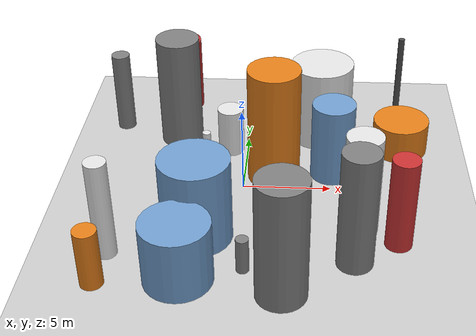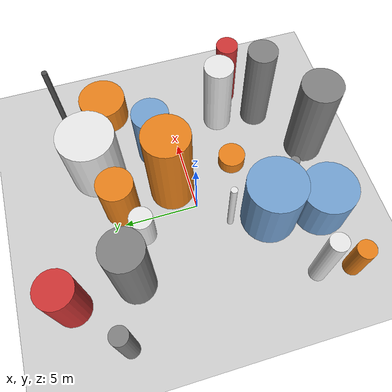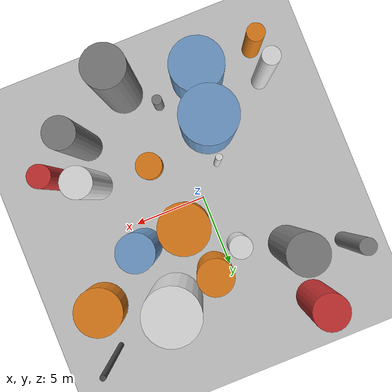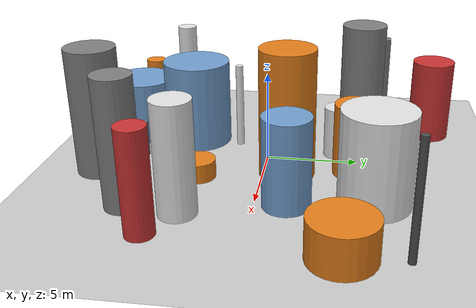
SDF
<?xml version='1.0'?>
<sdf version='1.6'>
  <world name='default'>
    <!-- Sun light -->
    <light name='sun' type='directional'>
      <cast_shadows>1</cast_shadows>
      <pose>0 0 10 0 0 0</pose>
      <diffuse>0.8 0.8 0.8 1</diffuse>
      <specular>0.2 0.2 0.2 1</specular>
      <attenuation>
        <range>1000</range>
        <constant>0.9</constant>
        <linear>0.01</linear>
        <quadratic>0.001</quadratic>
      </attenuation>
      <direction>-0.5 0.1 -0.9</direction>
    </light>

    <!-- Ground plane -->
    <model name='ground_plane'>
      <static>1</static>
      <link name='link'>
        <collision name='collision'>
          <geometry>
            <plane>
              <normal>0 0 1</normal>
              <size>100 100</size>
            </plane>
          </geometry>
          <surface>
            <contact>
              <collide_bitmask>65535</collide_bitmask>
              <ode/>
            </contact>
            <friction>
              <ode>
                <mu>100</mu>
                <mu2>50</mu2>
              </ode>
              <torsional><ode/></torsional>
            </friction>
            <bounce/>
          </surface>
          <max_contacts>10</max_contacts>
        </collision>
        <visual name='visual'>
          <cast_shadows>0</cast_shadows>
          <geometry>
            <plane>
              <normal>0 0 1</normal>
              <size>100 100</size>
            </plane>
          </geometry>
          <material>
            <script>
              <uri>file://media/materials/scripts/gazebo.material</uri>
              <n>Gazebo/Grey</n>
            </script>
          </material>
        </visual>
      </link>
    </model>

    <!-- Environment -->
    <magnetic_field>6e-06 2.3e-05 -4.2e-05</magnetic_field>
    <atmosphere type='adiabatic'/>
    <physics name='default_physics' default='0' type='ode'>
      <gravity>0 0 -9.8</gravity>
      <max_step_size>0.004</max_step_size>
      <real_time_factor>1</real_time_factor>
      <real_time_update_rate>250</real_time_update_rate>
    </physics>
    <scene>
      <ambient>0.4 0.4 0.4 1</ambient>
      <background>0.7 0.7 0.7 1</background>
      <shadows>1</shadows>
    </scene>
    <wind/>
    <spherical_coordinates>
      <surface_model>EARTH_WGS84</surface_model>
      <latitude_deg>0</latitude_deg>
      <longitude_deg>0</longitude_deg>
      <elevation>0</elevation>
      <heading_deg>0</heading_deg>
    </spherical_coordinates>

    <!-- ============ OBSTACLES (21) ============ -->
    <model name='obs_00'>
      <static>1</static>
      <link name='link'>
        <visual name='visual'>
          <geometry>
            <cylinder>
              <radius>1.8312</radius>
              <length>3.5835</length>
            </cylinder>
          </geometry>
          <material>
            <script>
              <n>Gazebo/Blue</n>
              <uri>file://media/materials/scripts/gazebo.material</uri>
            </script>
            <ambient>0.447 0.624 0.812 1</ambient>
          </material>
        </visual>
        <collision name='collision'>
          <geometry>
            <cylinder>
              <radius>1.8312</radius>
              <length>3.5835</length>
            </cylinder>
          </geometry>
          <max_contacts>10</max_contacts>
          <surface>
            <contact><ode/></contact>
            <bounce/>
            <friction>
              <ode><mu>1</mu><mu2>1</mu2></ode>
              <torsional><ode/></torsional>
            </friction>
          </surface>
        </collision>
      </link>
      <pose>-2.7024 -7.9680 1.7918 0 0 1.0926</pose>
    </model>

    <model name='obs_01'>
      <static>1</static>
      <link name='link'>
        <visual name='visual'>
          <geometry>
            <cylinder>
              <radius>1.2491</radius>
              <length>4.7437</length>
            </cylinder>
          </geometry>
          <material>
            <script>
              <n>Gazebo/Blue</n>
              <uri>file://media/materials/scripts/gazebo.material</uri>
            </script>
            <ambient>0.447 0.624 0.812 1</ambient>
          </material>
        </visual>
        <collision name='collision'>
          <geometry>
            <cylinder>
              <radius>1.2491</radius>
              <length>4.7437</length>
            </cylinder>
          </geometry>
          <max_contacts>10</max_contacts>
          <surface>
            <contact><ode/></contact>
            <bounce/>
            <friction>
              <ode><mu>1</mu><mu2>1</mu2></ode>
              <torsional><ode/></torsional>
            </friction>
          </surface>
        </collision>
      </link>
      <pose>5.0953 1.6174 2.3718 0 0 0.5636</pose>
    </model>

    <model name='obs_02'>
      <static>1</static>
      <link name='link'>
        <visual name='visual'>
          <geometry>
            <cylinder>
              <radius>1.1900</radius>
              <length>4.7048</length>
            </cylinder>
          </geometry>
          <material>
            <script>
              <n>Gazebo/Red</n>
              <uri>file://media/materials/scripts/gazebo.material</uri>
            </script>
            <ambient>0.8 0.2 0.2 1</ambient>
          </material>
        </visual>
        <collision name='collision'>
          <geometry>
            <cylinder>
              <radius>1.1900</radius>
              <length>4.7048</length>
            </cylinder>
          </geometry>
          <max_contacts>10</max_contacts>
          <surface>
            <contact><ode/></contact>
            <bounce/>
            <friction>
              <ode><mu>1</mu><mu2>1</mu2></ode>
              <torsional><ode/></torsional>
            </friction>
          </surface>
        </collision>
      </link>
      <pose>-4.5450 9.3122 2.3524 0 0 0.1220</pose>
    </model>

    <model name='obs_03'>
      <static>1</static>
      <link name='link'>
        <visual name='visual'>
          <geometry>
            <cylinder>
              <radius>0.9966</radius>
              <length>5.9256</length>
            </cylinder>
          </geometry>
          <material>
            <script>
              <n>Gazebo/White</n>
              <uri>file://media/materials/scripts/gazebo.material</uri>
            </script>
            <ambient>0.9 0.9 0.9 1</ambient>
          </material>
        </visual>
        <collision name='collision'>
          <geometry>
            <cylinder>
              <radius>0.9966</radius>
              <length>5.9256</length>
            </cylinder>
          </geometry>
          <max_contacts>10</max_contacts>
          <surface>
            <contact><ode/></contact>
            <bounce/>
            <friction>
              <ode><mu>1</mu><mu2>1</mu2></ode>
              <torsional><ode/></torsional>
            </friction>
          </surface>
        </collision>
      </link>
      <pose>6.5657 -3.5033 2.9628 0 0 3.1163</pose>
    </model>

    <model name='obs_04'>
      <static>1</static>
      <link name='link'>
        <visual name='visual'>
          <geometry>
            <cylinder>
              <radius>0.5815</radius>
              <length>5.7541</length>
            </cylinder>
          </geometry>
          <material>
            <script>
              <n>Gazebo/White</n>
              <uri>file://media/materials/scripts/gazebo.material</uri>
            </script>
            <ambient>0.9 0.9 0.9 1</ambient>
          </material>
        </visual>
        <collision name='collision'>
          <geometry>
            <cylinder>
              <radius>0.5815</radius>
              <length>5.7541</length>
            </cylinder>
          </geometry>
          <max_contacts>10</max_contacts>
          <surface>
            <contact><ode/></contact>
            <bounce/>
            <friction>
              <ode><mu>1</mu><mu2>1</mu2></ode>
              <torsional><ode/></torsional>
            </friction>
          </surface>
        </collision>
      </link>
      <pose>-6.7217 -6.1707 2.8770 0 0 0.0947</pose>
    </model>

    <model name='obs_05'>
      <static>1</static>
      <link name='link'>
        <visual name='visual'>
          <geometry>
            <cylinder>
              <radius>0.7417</radius>
              <length>5.4109</length>
            </cylinder>
          </geometry>
          <material>
            <script>
              <n>Gazebo/Red</n>
              <uri>file://media/materials/scripts/gazebo.material</uri>
            </script>
            <ambient>0.8 0.2 0.2 1</ambient>
          </material>
        </visual>
        <collision name='collision'>
          <geometry>
            <cylinder>
              <radius>0.7417</radius>
              <length>5.4109</length>
            </cylinder>
          </geometry>
          <max_contacts>10</max_contacts>
          <surface>
            <contact><ode/></contact>
            <bounce/>
            <friction>
              <ode><mu>1</mu><mu2>1</mu2></ode>
              <torsional><ode/></torsional>
            </friction>
          </surface>
        </collision>
      </link>
      <pose>8.5818 -4.7214 2.7055 0 0 1.9116</pose>
    </model>

    <model name='obs_06'>
      <static>1</static>
      <link name='link'>
        <visual name='visual'>
          <geometry>
            <cylinder>
              <radius>0.6165</radius>
              <length>3.3660</length>
            </cylinder>
          </geometry>
          <material>
            <script>
              <n>Gazebo/Orange</n>
              <uri>file://media/materials/scripts/gazebo.material</uri>
            </script>
            <ambient>0.9 0.5 0.1 1</ambient>
          </material>
        </visual>
        <collision name='collision'>
          <geometry>
            <cylinder>
              <radius>0.6165</radius>
              <length>3.3660</length>
            </cylinder>
          </geometry>
          <max_contacts>10</max_contacts>
          <surface>
            <contact><ode/></contact>
            <bounce/>
            <friction>
              <ode><mu>1</mu><mu2>1</mu2></ode>
              <torsional><ode/></torsional>
            </friction>
          </surface>
        </collision>
      </link>
      <pose>-6.9812 -8.4933 1.6830 0 0 0.5033</pose>
    </model>

    <model name='obs_07'>
      <static>1</static>
      <link name='link'>
        <visual name='visual'>
          <geometry>
            <cylinder>
              <radius>0.1902</radius>
              <length>5.9791</length>
            </cylinder>
          </geometry>
          <material>
            <script>
              <n>Gazebo/DarkGrey</n>
              <uri>file://media/materials/scripts/gazebo.material</uri>
            </script>
            <ambient>0.3 0.3 0.3 1</ambient>
          </material>
        </visual>
        <collision name='collision'>
          <geometry>
            <cylinder>
              <radius>0.1902</radius>
              <length>5.9791</length>
            </cylinder>
          </geometry>
          <max_contacts>10</max_contacts>
          <surface>
            <contact><ode/></contact>
            <bounce/>
            <friction>
              <ode><mu>1</mu><mu2>1</mu2></ode>
              <torsional><ode/></torsional>
            </friction>
          </surface>
        </collision>
      </link>
      <pose>9.2089 7.4641 2.9896 0 0 2.1253</pose>
    </model>

    <model name='obs_08'>
      <static>1</static>
      <link name='link'>
        <visual name='visual'>
          <geometry>
            <cylinder>
              <radius>1.9140</radius>
              <length>4.9363</length>
            </cylinder>
          </geometry>
          <material>
            <script>
              <n>Gazebo/Blue</n>
              <uri>file://media/materials/scripts/gazebo.material</uri>
            </script>
            <ambient>0.447 0.624 0.812 1</ambient>
          </material>
        </visual>
        <collision name='collision'>
          <geometry>
            <cylinder>
              <radius>1.9140</radius>
              <length>4.9363</length>
            </cylinder>
          </geometry>
          <max_contacts>10</max_contacts>
          <surface>
            <contact><ode/></contact>
            <bounce/>
            <friction>
              <ode><mu>1</mu><mu2>1</mu2></ode>
              <torsional><ode/></torsional>
            </friction>
          </surface>
        </collision>
      </link>
      <pose>-2.1291 -4.4837 2.4682 0 0 1.0130</pose>
    </model>

    <model name='obs_09'>
      <static>1</static>
      <link name='link'>
        <visual name='visual'>
          <geometry>
            <cylinder>
              <radius>0.9897</radius>
              <length>6.8270</length>
            </cylinder>
          </geometry>
          <material>
            <script>
              <n>Gazebo/Grey</n>
              <uri>file://media/materials/scripts/gazebo.material</uri>
            </script>
            <ambient>0.5 0.5 0.5 1</ambient>
          </material>
        </visual>
        <collision name='collision'>
          <geometry>
            <cylinder>
              <radius>0.9897</radius>
              <length>6.8270</length>
            </cylinder>
          </geometry>
          <max_contacts>10</max_contacts>
          <surface>
            <contact><ode/></contact>
            <bounce/>
            <friction>
              <ode><mu>1</mu><mu2>1</mu2></ode>
              <torsional><ode/></torsional>
            </friction>
          </surface>
        </collision>
      </link>
      <pose>6.2165 -6.3152 3.4135 0 0 0.9264</pose>
    </model>

    <model name='obs_10'>
      <static>1</static>
      <link name='link'>
        <visual name='visual'>
          <geometry>
            <cylinder>
              <radius>1.2790</radius>
              <length>6.8494</length>
            </cylinder>
          </geometry>
          <material>
            <script>
              <n>Gazebo/Grey</n>
              <uri>file://media/materials/scripts/gazebo.material</uri>
            </script>
            <ambient>0.5 0.5 0.5 1</ambient>
          </material>
        </visual>
        <collision name='collision'>
          <geometry>
            <cylinder>
              <radius>1.2790</radius>
              <length>6.8494</length>
            </cylinder>
          </geometry>
          <max_contacts>10</max_contacts>
          <surface>
            <contact><ode/></contact>
            <bounce/>
            <friction>
              <ode><mu>1</mu><mu2>1</mu2></ode>
              <torsional><ode/></torsional>
            </friction>
          </surface>
        </collision>
      </link>
      <pose>-4.1910 5.1546 3.4247 0 0 1.6947</pose>
    </model>

    <model name='obs_11'>
      <static>1</static>
      <link name='link'>
        <visual name='visual'>
          <geometry>
            <cylinder>
              <radius>0.5508</radius>
              <length>5.0350</length>
            </cylinder>
          </geometry>
          <material>
            <script>
              <n>Gazebo/Grey</n>
              <uri>file://media/materials/scripts/gazebo.material</uri>
            </script>
            <ambient>0.5 0.5 0.5 1</ambient>
          </material>
        </visual>
        <collision name='collision'>
          <geometry>
            <cylinder>
              <radius>0.5508</radius>
              <length>5.0350</length>
            </cylinder>
          </geometry>
          <max_contacts>10</max_contacts>
          <surface>
            <contact><ode/></contact>
            <bounce/>
            <friction>
              <ode><mu>1</mu><mu2>1</mu2></ode>
              <torsional><ode/></torsional>
            </friction>
          </surface>
        </collision>
      </link>
      <pose>-7.9670 6.3869 2.5175 0 0 2.9630</pose>
    </model>

    <model name='obs_12'>
      <static>1</static>
      <link name='link'>
        <visual name='visual'>
          <geometry>
            <cylinder>
              <radius>1.8818</radius>
              <length>5.0243</length>
            </cylinder>
          </geometry>
          <material>
            <script>
              <n>Gazebo/White</n>
              <uri>file://media/materials/scripts/gazebo.material</uri>
            </script>
            <ambient>0.9 0.9 0.9 1</ambient>
          </material>
        </visual>
        <collision name='collision'>
          <geometry>
            <cylinder>
              <radius>1.8818</radius>
              <length>5.0243</length>
            </cylinder>
          </geometry>
          <max_contacts>10</max_contacts>
          <surface>
            <contact><ode/></contact>
            <bounce/>
            <friction>
              <ode><mu>1</mu><mu2>1</mu2></ode>
              <torsional><ode/></torsional>
            </friction>
          </surface>
        </collision>
      </link>
      <pose>4.4378 5.9350 2.5122 0 0 1.2640</pose>
    </model>

    <model name='obs_13'>
      <static>1</static>
      <link name='link'>
        <visual name='visual'>
          <geometry>
            <cylinder>
              <radius>1.6665</radius>
              <length>2.0811</length>
            </cylinder>
          </geometry>
          <material>
            <script>
              <n>Gazebo/Orange</n>
              <uri>file://media/materials/scripts/gazebo.material</uri>
            </script>
            <ambient>0.9 0.5 0.1 1</ambient>
          </material>
        </visual>
        <collision name='collision'>
          <geometry>
            <cylinder>
              <radius>1.6665</radius>
              <length>2.0811</length>
            </cylinder>
          </geometry>
          <max_contacts>10</max_contacts>
          <surface>
            <contact><ode/></contact>
            <bounce/>
            <friction>
              <ode><mu>1</mu><mu2>1</mu2></ode>
              <torsional><ode/></torsional>
            </friction>
          </surface>
        </collision>
      </link>
      <pose>9.2816 4.4809 1.0406 0 0 2.7550</pose>
    </model>

    <model name='obs_14'>
      <static>1</static>
      <link name='link'>
        <visual name='visual'>
          <geometry>
            <cylinder>
              <radius>0.9384</radius>
              <length>1.0351</length>
            </cylinder>
          </geometry>
          <material>
            <script>
              <n>Gazebo/Orange</n>
              <uri>file://media/materials/scripts/gazebo.material</uri>
            </script>
            <ambient>0.9 0.5 0.1 1</ambient>
          </material>
        </visual>
        <collision name='collision'>
          <geometry>
            <cylinder>
              <radius>0.9384</radius>
              <length>1.0351</length>
            </cylinder>
          </geometry>
          <max_contacts>10</max_contacts>
          <surface>
            <contact><ode/></contact>
            <bounce/>
            <friction>
              <ode><mu>1</mu><mu2>1</mu2></ode>
              <torsional><ode/></torsional>
            </friction>
          </surface>
        </collision>
      </link>
      <pose>2.6909 -3.3835 0.5175 0 0 1.1493</pose>
    </model>

    <model name='obs_15'>
      <static>1</static>
      <link name='link'>
        <visual name='visual'>
          <geometry>
            <cylinder>
              <radius>0.7754</radius>
              <length>2.9063</length>
            </cylinder>
          </geometry>
          <material>
            <script>
              <n>Gazebo/White</n>
              <uri>file://media/materials/scripts/gazebo.material</uri>
            </script>
            <ambient>0.9 0.9 0.9 1</ambient>
          </material>
        </visual>
        <collision name='collision'>
          <geometry>
            <cylinder>
              <radius>0.7754</radius>
              <length>2.9063</length>
            </cylinder>
          </geometry>
          <max_contacts>10</max_contacts>
          <surface>
            <contact><ode/></contact>
            <bounce/>
            <friction>
              <ode><mu>1</mu><mu2>1</mu2></ode>
              <torsional><ode/></torsional>
            </friction>
          </surface>
        </collision>
      </link>
      <pose>-1.0195 3.8863 1.4531 0 0 1.2936</pose>
    </model>

    <model name='obs_16'>
      <static>1</static>
      <link name='link'>
        <visual name='visual'>
          <geometry>
            <cylinder>
              <radius>1.2053</radius>
              <length>3.9896</length>
            </cylinder>
          </geometry>
          <material>
            <script>
              <n>Gazebo/Orange</n>
              <uri>file://media/materials/scripts/gazebo.material</uri>
            </script>
            <ambient>0.9 0.5 0.1 1</ambient>
          </material>
        </visual>
        <collision name='collision'>
          <geometry>
            <cylinder>
              <radius>1.2053</radius>
              <length>3.9896</length>
            </cylinder>
          </geometry>
          <max_contacts>10</max_contacts>
          <surface>
            <contact><ode/></contact>
            <bounce/>
            <friction>
              <ode><mu>1</mu><mu2>1</mu2></ode>
              <torsional><ode/></torsional>
            </friction>
          </surface>
        </collision>
      </link>
      <pose>1.1657 4.9134 1.9948 0 0 1.6376</pose>
    </model>

    <model name='obs_17'>
      <static>1</static>
      <link name='link'>
        <visual name='visual'>
          <geometry>
            <cylinder>
              <radius>0.3457</radius>
              <length>2.0243</length>
            </cylinder>
          </geometry>
          <material>
            <script>
              <n>Gazebo/Grey</n>
              <uri>file://media/materials/scripts/gazebo.material</uri>
            </script>
            <ambient>0.5 0.5 0.5 1</ambient>
          </material>
        </visual>
        <collision name='collision'>
          <geometry>
            <cylinder>
              <radius>0.3457</radius>
              <length>2.0243</length>
            </cylinder>
          </geometry>
          <max_contacts>10</max_contacts>
          <surface>
            <contact><ode/></contact>
            <bounce/>
            <friction>
              <ode><mu>1</mu><mu2>1</mu2></ode>
              <torsional><ode/></torsional>
            </friction>
          </surface>
        </collision>
      </link>
      <pose>0.4897 -7.1516 1.0122 0 0 1.4108</pose>
    </model>

    <model name='obs_18'>
      <static>1</static>
      <link name='link'>
        <visual name='visual'>
          <geometry>
            <cylinder>
              <radius>1.3420</radius>
              <length>6.9470</length>
            </cylinder>
          </geometry>
          <material>
            <script>
              <n>Gazebo/Grey</n>
              <uri>file://media/materials/scripts/gazebo.material</uri>
            </script>
            <ambient>0.5 0.5 0.5 1</ambient>
          </material>
        </visual>
        <collision name='collision'>
          <geometry>
            <cylinder>
              <radius>1.3420</radius>
              <length>6.9470</length>
            </cylinder>
          </geometry>
          <max_contacts>10</max_contacts>
          <surface>
            <contact><ode/></contact>
            <bounce/>
            <friction>
              <ode><mu>1</mu><mu2>1</mu2></ode>
              <torsional><ode/></torsional>
            </friction>
          </surface>
        </collision>
      </link>
      <pose>2.5243 -8.8410 3.4735 0 0 2.3081</pose>
    </model>

    <model name='obs_19'>
      <static>1</static>
      <link name='link'>
        <visual name='visual'>
          <geometry>
            <cylinder>
              <radius>1.5124</radius>
              <length>7.0334</length>
            </cylinder>
          </geometry>
          <material>
            <script>
              <n>Gazebo/Orange</n>
              <uri>file://media/materials/scripts/gazebo.material</uri>
            </script>
            <ambient>0.9 0.5 0.1 1</ambient>
          </material>
        </visual>
        <collision name='collision'>
          <geometry>
            <cylinder>
              <radius>1.5124</radius>
              <length>7.0334</length>
            </cylinder>
          </geometry>
          <max_contacts>10</max_contacts>
          <surface>
            <contact><ode/></contact>
            <bounce/>
            <friction>
              <ode><mu>1</mu><mu2>1</mu2></ode>
              <torsional><ode/></torsional>
            </friction>
          </surface>
        </collision>
      </link>
      <pose>1.7049 1.2711 3.5167 0 0 1.5890</pose>
    </model>

    <model name='obs_20'>
      <static>1</static>
      <link name='link'>
        <visual name='visual'>
          <geometry>
            <cylinder>
              <radius>0.2172</radius>
              <length>4.8645</length>
            </cylinder>
          </geometry>
          <material>
            <script>
              <n>Gazebo/White</n>
              <uri>file://media/materials/scripts/gazebo.material</uri>
            </script>
            <ambient>0.9 0.9 0.9 1</ambient>
          </material>
        </visual>
        <collision name='collision'>
          <geometry>
            <cylinder>
              <radius>0.2172</radius>
              <length>4.8645</length>
            </cylinder>
          </geometry>
          <max_contacts>10</max_contacts>
          <surface>
            <contact><ode/></contact>
            <bounce/>
            <friction>
              <ode><mu>1</mu><mu2>1</mu2></ode>
              <torsional><ode/></torsional>
            </friction>
          </surface>
        </collision>
      </link>
      <pose>-1.7341 -1.8712 2.4323 0 0 2.3270</pose>
    </model>

    <!-- GUI camera -->
    <gui fullscreen='0'>
      <camera name='user_camera'>
        <pose>-15 0 18 0 0.85 0.15</pose>
        <view_controller>orbit</view_controller>
        <projection_type>perspective</projection_type>
      </camera>
    </gui>
  </world>
</sdf>
